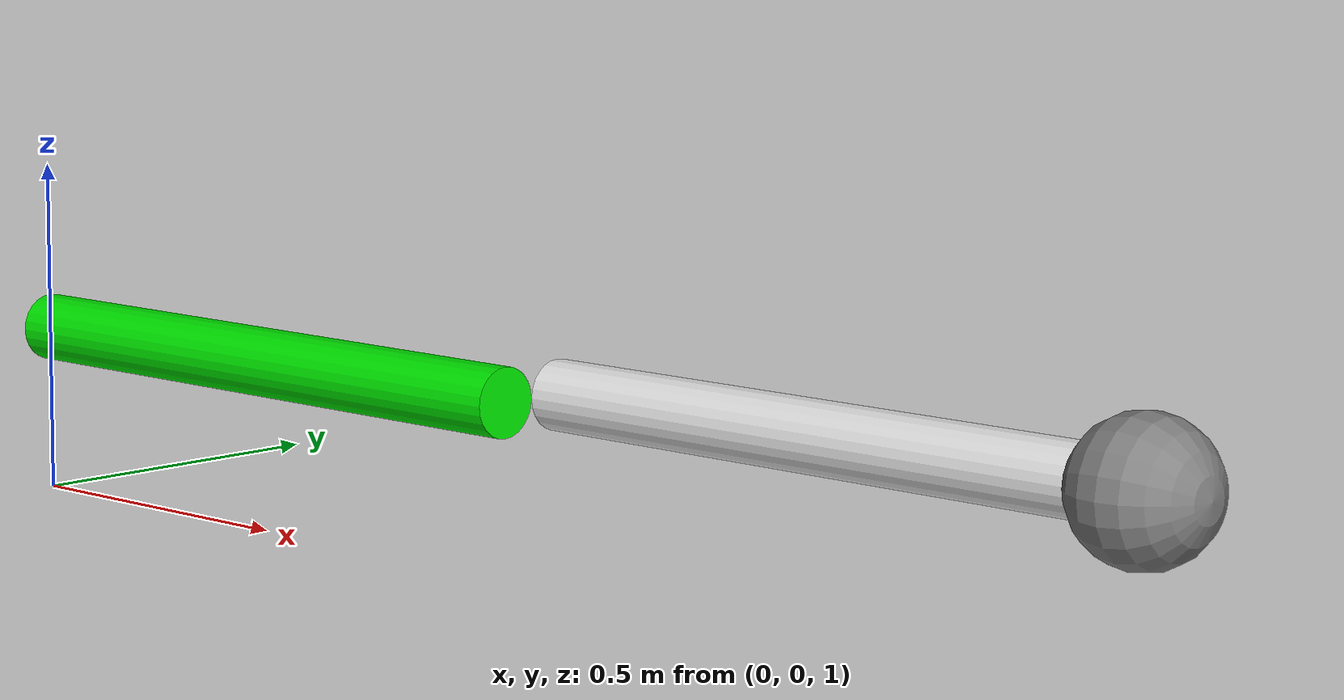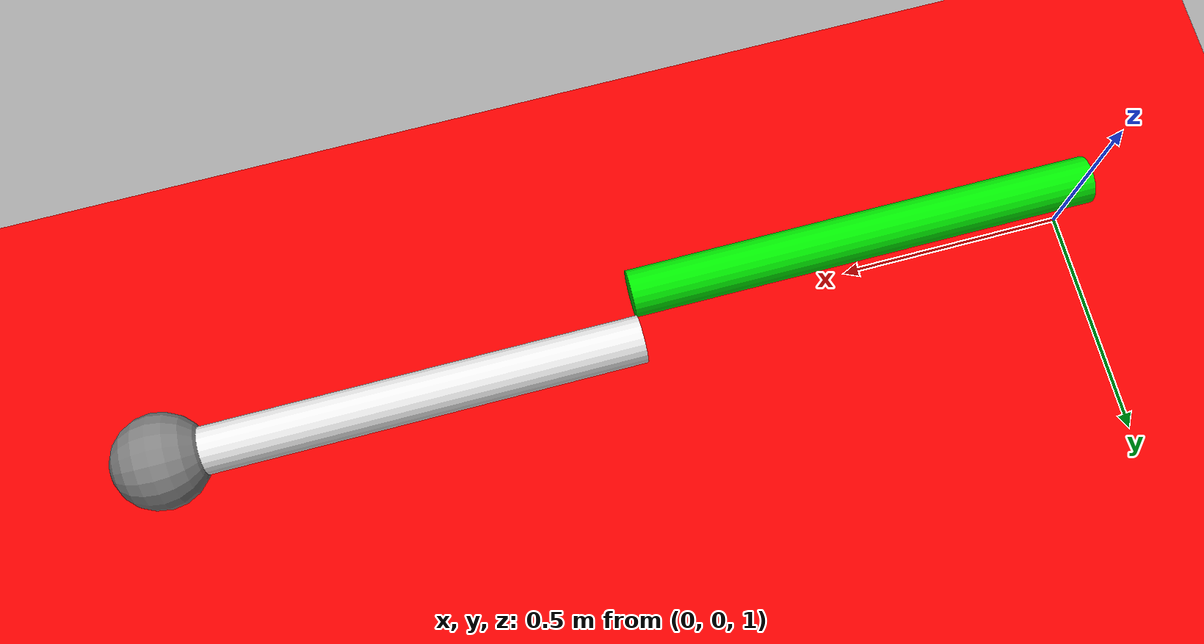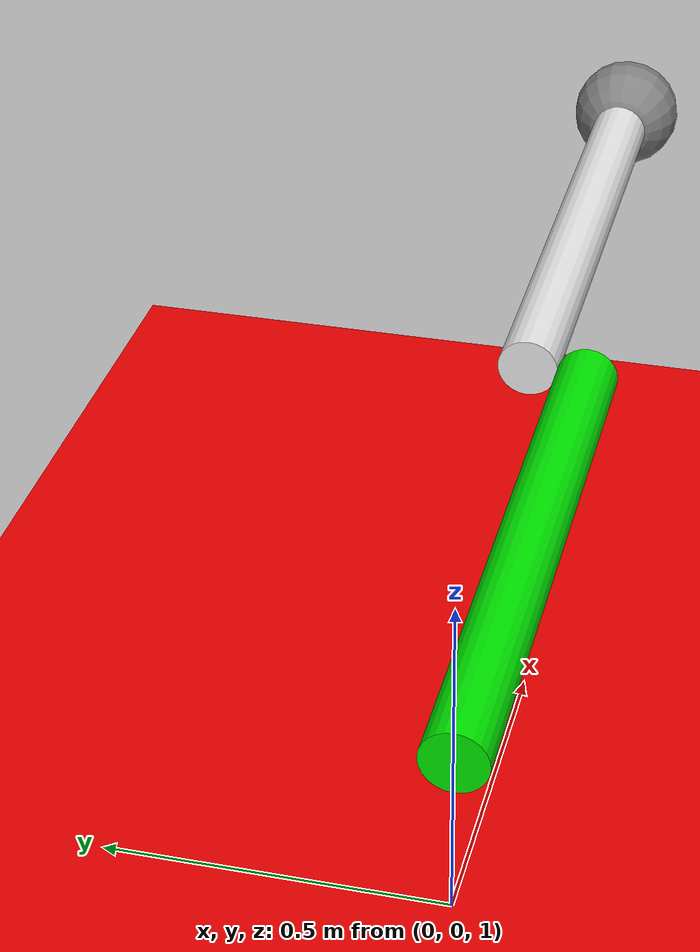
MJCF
<mujoco>
	<option timestep="0.001" integrator="RK4" gravity="0 0 -9.81">
		<!--timestep: simulation time step in seconds.-->
		<flag energy="enable" contact="disable" />
	</option>
	<worldbody>
	<!--The element worldbody is used for the top-level body,-->
        <light diffuse=".5 .5 .5" pos="0 0 3" dir="0 0 -1"/>
		<geom type="plane" size="10 10 0.1" rgba=".9 0 0 1"/>
		<body pos="0.5 0 1.25" euler="0 90 0">
		<!--The element body is used for all other bodies.-->
			<joint name="pin" type="hinge" axis = "0 -1 0" pos="0 0 -0.5"/>
			<geom type="cylinder" size="0.05 0.5" rgba="0 .9 0 1" mass="1"/>
			<body pos="0 0.1 1" euler="0 0 0">
				<joint name="pin2" type="hinge" axis = "0 -1 0" pos="0 0 -0.5"/>
				<geom type="cylinder" size="0.05 0.5" rgba=".9 .9 .9 1" mass="1"/>
				<site name="tip" pos="0 0 0.5" size="0.1" />
			</body>
		</body>
	</worldbody>
	<actuator>
		<position name="pservo1" joint="pin" kp="100" />
		<velocity name="vservo1" joint="pin" kv="10" />
		<position name="pservo2" joint="pin2" kp="100" />
		<velocity name="vservo2" joint="pin2" kv="10" />
	</actuator>
	<sensor>
		<framepos  objtype='site' objname='tip' noise="0.01" />
		<framelinvel  objtype='site' objname='tip' noise="0.02" />
	</sensor>
</mujoco>
